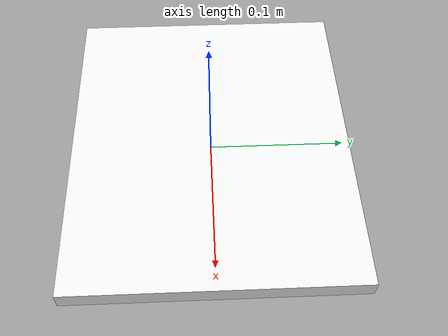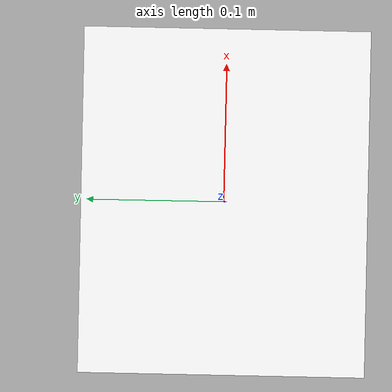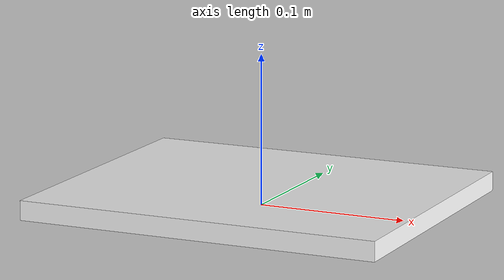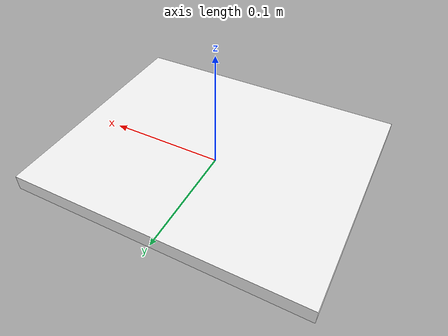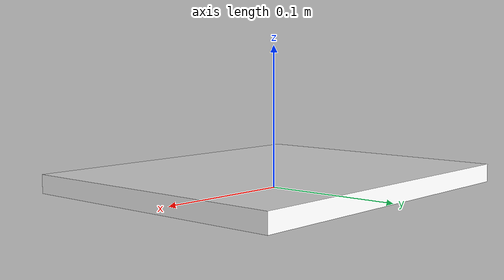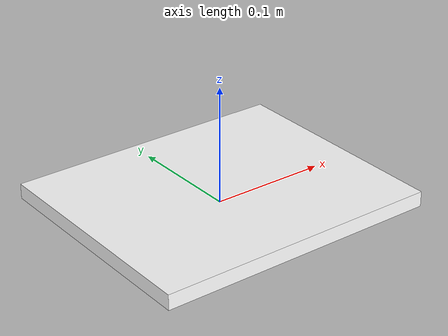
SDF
<?xml version='1.0'?>
<sdf version='1.7'>
    <model name="bracket">
        <link name = "base_link">
            <inertial>
                <mass>1</mass>
                <inertia>
                    <ixx>0.003448</ixx>
                    <ixy>0</ixy>
                    <ixz>0.000</ixz>
                    <iyy>0.008435</iyy>
                    <iyz>0</iyz>
                    <izz>0.00501</izz>
                </inertia>
            </inertial>
            <pose>0 0 0 0 -0 0</pose>
            <visual name="visual">
                <pose>0 0 0.0065 0 0 0</pose>
                <geometry>
                    <box>
                        <size>0.245 0.203 0.013</size>
                    </box>
                </geometry>
                <material>
                    <diffuse>1 1 1 1</diffuse>
                </material>
            </visual>
            <collision name="collision">
                <pose>0 0 0.0065 0 0 0</pose>
                <geometry>
                    <box>
                        <size>0.245 0.203 0.013</size>
                    </box>
                </geometry>
            </collision>
        </link>
    </model>
</sdf>
